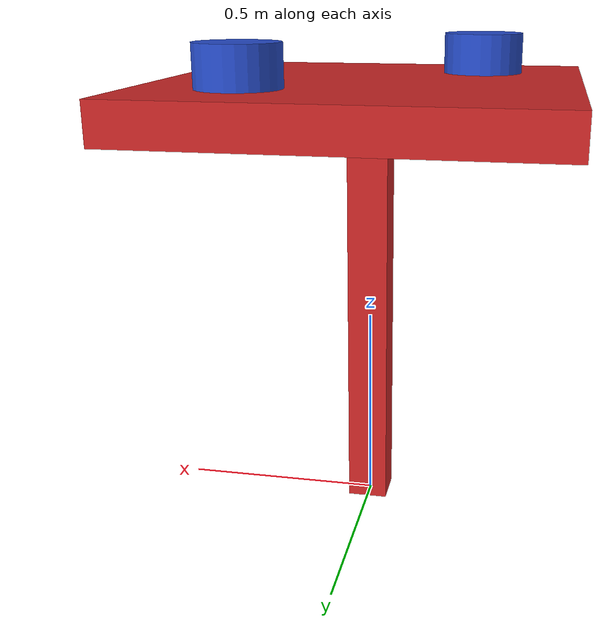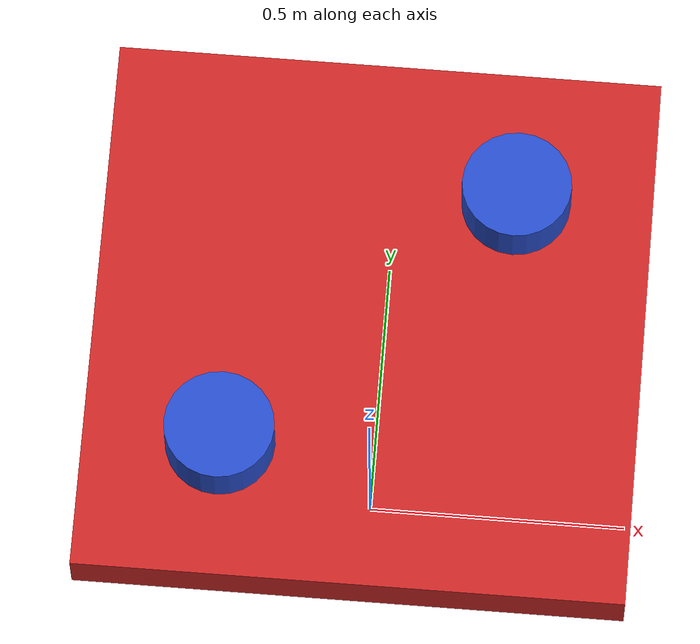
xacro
<?xml version="1.0"?>
<robot xmlns:xacro="http://ros.org/wiki/xacro" name="testjoint">
<xacro:include filename="$(find com_workshop)/urdf/comShapes.xacro" />

<xacro:red_box name="stand" mass="100" length="0.1" width="0.1" height="1" z="0.5"/>

<xacro:red_box name="sheet" mass="1" length="1" width="1" height="0.1"/>
<joint name="fixed2" type="fixed">
<parent link="stand"/>
<child link="sheet"/>
<origin xyz="0 0 1.05"/>
</joint>

<xacro:blue_cylinder name="weight1" radius="0.1" mass="0.5" length="0.1"/>
<joint name="fixed3" type="fixed">
<parent link="stand"/>
<child link="weight1"/>
<origin xyz="0.25 0.25 1.15"/>
</joint>

<xacro:blue_cylinder name="weight2" radius="0.1" mass="50" length="0.1"/>
<joint name="fixed4" type="fixed">
<parent link="stand"/>
<child link="weight2"/>
<origin xyz="-0.25 -0.25 1.15"/>
</joint>
</robot>

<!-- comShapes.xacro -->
<robot xmlns:xacro="http://ros.org/wiki/xacro" name="testshape">
<xacro:macro name="blue_cylinder" params="name radius mass length x:=0 y:=0 z:=0">
	<link name="${name}">
        <visual>
	    <origin xyz="${x} ${y} ${z}"/>
            <geometry>
		    <cylinder length="${length}" radius="${radius}"/>
            </geometry>
        </visual>
        <collision>
	    <origin xyz="${x} ${y} ${z}"/>
            <geometry>
		    <cylinder length="${length}" radius="${radius}"/>
            </geometry>
    </collision>
    <inertial>
	    <origin xyz="${x} ${y} ${z}"/>
	    <mass value="${mass}" />
	    <!-- http://scienceworld.wolfram.com/physics/MomentofInertiaCylinder.html -->
	    <inertia ixx="${1/12*mass*length*length + 1/4*mass*radius*radius}" ixy="0.0" ixz="0.0" iyy="${1/12*mass*length*length + 1/4*mass*radius*radius}" iyz="0.0" izz="${1/2*mass*radius*radius}" />
    </inertial>
    </link>
    <gazebo reference="${name}">
   <material>Gazebo/Blue</material>
 </gazebo>
</xacro:macro>
<xacro:macro name="red_box" params="name mass length width height x:=0 y:=0 z:=0">
    <link name="${name}">
        <visual>
		<origin xyz="${x} ${y} ${z}"/>
		<geometry>
		    <box size="${length} ${width} ${height}"/>
            </geometry>
        </visual>
        <collision>
	    <origin xyz="${x} ${y} ${z}"/>
            <geometry>
		    <box size="${length} ${width} ${height}"/>
            </geometry>
    </collision>
    <inertial>
	    <mass value="${mass}" />
	    <!-- https://en.wikipedia.org/wiki/List_of_moments_of_inertia#List_of_3D_inertia_tensors  Note: we are using length, width, height where they use width, height, depth -->
	    <inertia ixx="${1/12*mass*(height*height + width*width)}" ixy="0.0" ixz="0.0" iyy="${1/12*mass*(height*height + length*length)}" iyz="0.0" izz="${1/12*mass*(length*length + width*width)}" />
    </inertial>
    </link>
    <gazebo reference="${name}">
   <material>Gazebo/Red</material>
 </gazebo>
</xacro:macro>
</robot>
